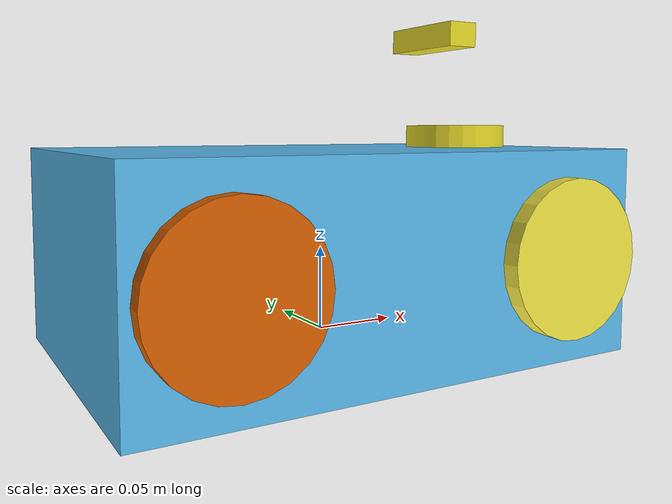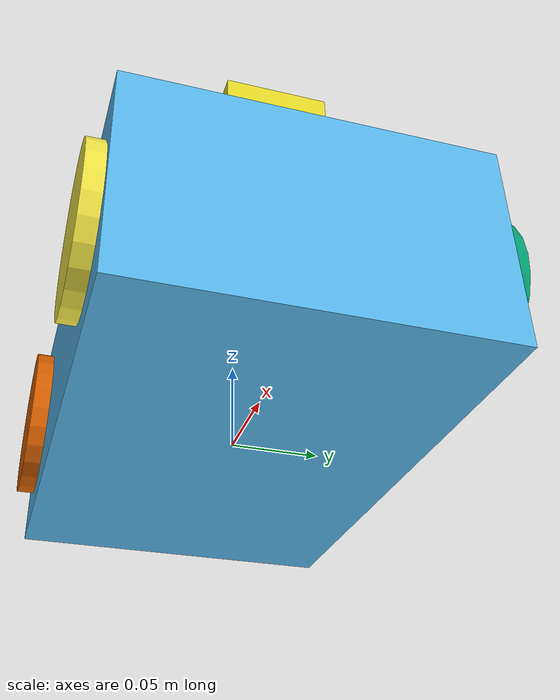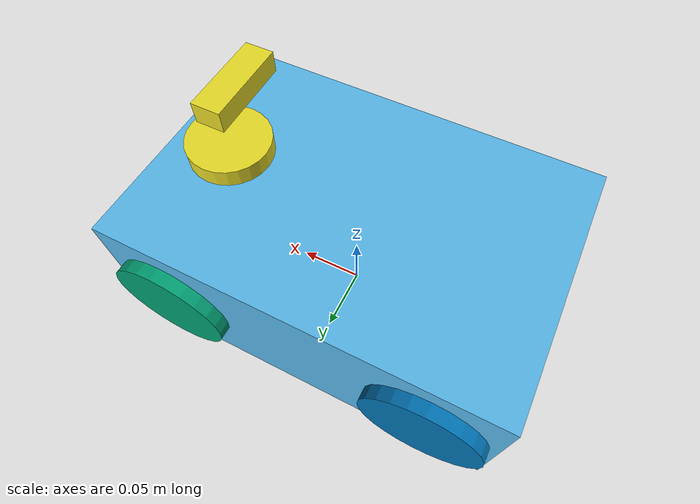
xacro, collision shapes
<?xml version="1.0"?>
<robot name="limo_mecanum" xmlns:xacro="http://www.ros.org/wiki/xacro">
  <xacro:include filename="$(find limo_description)/urdf/limo_xacro.xacro"/>
  <xacro:arg name="use_gz" default="true"/>
  <xacro:arg name="laser_x" default="0.103"/>
  <xacro:arg name="laser_y" default="0.0"/>
  <xacro:arg name="laser_z" default="-0.034"/>
  <xacro:arg name="laser_roll" default="0.0"/>
  <xacro:arg name="laser_pitch" default="0.0"/>
  <xacro:arg name="laser_yaw" default="0.0"/>
  <xacro:arg name="camera_x" default="0.084"/>
  <xacro:arg name="camera_y" default="0.0"/>
  <xacro:arg name="camera_z" default="0.03"/>
  <xacro:arg name="camera_roll" default="0.0"/>
  <xacro:arg name="camera_pitch" default="0.0"/>
  <xacro:arg name="camera_yaw" default="0.0"/>

  <xacro:property name="M_PI" value="3.141592653589793"/>
  <xacro:property name="wheelbase" value="0.20"/>
  <xacro:property name="track" value="0.13"/>
  <xacro:property name="wheel_vertical_offset" value="-0.10"/>
  <xacro:property name="wheel_length" value="0.045"/>
  <xacro:property name="wheel_radius" value="0.045"/>

  <link name="base_footprint"/>
  <joint name="base_joint" type="fixed">
    <parent link="base_footprint"/>
    <child link="base_link"/>
    <origin xyz="0 0 0.15" rpy="0 0 0"/>
  </joint>

  <link name="base_link">
    <inertial>
      <origin xyz="0 0 -0.10" rpy="0 0 0"/>
      <mass value="4.34"/>
      <inertia ixx="0.040" ixy="0" ixz="0" iyy="0.025" iyz="0" izz="0.050"/>
    </inertial>
    <visual>
      <origin xyz="0 0 -0.15" rpy="0 0 ${M_PI/2}"/>
      <geometry>
        <mesh filename="package://limo_description/meshes/limo_base.dae"/>
      </geometry>
    </visual>
    <collision>
      <origin xyz="0 0 -0.10" rpy="0 0 0"/>
      <geometry>
        <box size="0.30 0.20 0.12"/>
      </geometry>
    </collision>
  </link>

  <xacro:limo_wheel parent_prefix="base_link" wheel_prefix="front_left" reflect="1">
    <origin xyz="${wheelbase/2} ${track/2} ${wheel_vertical_offset}" rpy="0 0 0"/>
  </xacro:limo_wheel>
  <xacro:limo_wheel parent_prefix="base_link" wheel_prefix="front_right" reflect="-1">
    <origin xyz="${wheelbase/2} ${-track/2} ${wheel_vertical_offset}" rpy="${M_PI} 0 0"/>
  </xacro:limo_wheel>
  <xacro:limo_wheel parent_prefix="base_link" wheel_prefix="rear_left" reflect="1">
    <origin xyz="${-wheelbase/2} ${track/2} ${wheel_vertical_offset}" rpy="0 0 0"/>
  </xacro:limo_wheel>
  <xacro:limo_wheel parent_prefix="base_link" wheel_prefix="rear_right" reflect="-1">
    <origin xyz="${-wheelbase/2} ${-track/2} ${wheel_vertical_offset}" rpy="${M_PI} 0 0"/>
  </xacro:limo_wheel>

  <xacro:limo_laser parent_prefix="base_link" frame_prefix="laser">
    <origin
      xyz="$(arg laser_x) $(arg laser_y) $(arg laser_z)"
      rpy="$(arg laser_roll) $(arg laser_pitch) $(arg laser_yaw)"/>
  </xacro:limo_laser>
  <xacro:limo_depth_camera parent_prefix="base_link" frame_prefix="camera">
    <origin
      xyz="$(arg camera_x) $(arg camera_y) $(arg camera_z)"
      rpy="$(arg camera_roll) $(arg camera_pitch) $(arg camera_yaw)"/>
  </xacro:limo_depth_camera>
  <xacro:limo_imu parent_prefix="base_link" frame_prefix="imu">
    <origin xyz="0 0 -0.10" rpy="0 0 0"/>
  </xacro:limo_imu>

  <!-- Gazebo Sim / Fortress is the default simulator on ROS 2 Humble. -->
  <xacro:if value="$(arg use_gz)">
    <gazebo>
      <plugin filename="libignition-gazebo6-velocity-control-system.so"
              name="ignition::gazebo::systems::VelocityControl">
        <topic>/cmd_vel</topic>
      </plugin>
      <plugin filename="libignition-gazebo6-odometry-publisher-system.so"
              name="ignition::gazebo::systems::OdometryPublisher">
        <odom_frame>odom</odom_frame>
        <robot_base_frame>base_footprint</robot_base_frame>
        <odom_topic>/odom</odom_topic>
        <tf_topic>/tf</tf_topic>
        <odom_publish_frequency>50</odom_publish_frequency>
      </plugin>
    </gazebo>
  </xacro:if>

  <xacro:unless value="$(arg use_gz)">
    <gazebo>
      <plugin name="mecanum_controller" filename="libgazebo_ros_planar_move.so">
        <command_topic>/cmd_vel</command_topic>
        <odometry_topic>/odom</odometry_topic>
        <odometry_frame>odom</odometry_frame>
        <odometry_rate>50.0</odometry_rate>
        <robot_base_frame>base_footprint</robot_base_frame>
        <publish_odom>true</publish_odom>
        <publish_odom_tf>true</publish_odom_tf>
      </plugin>
    </gazebo>
  </xacro:unless>

  <xacro:if value="$(arg use_gz)">
    <gazebo reference="laser_link">
      <sensor name="lidar" type="gpu_lidar">
      <topic>/scan</topic>
      <gz_frame_id>laser_link</gz_frame_id>
      <always_on>true</always_on>
      <update_rate>10</update_rate>
      <visualize>true</visualize>
      <lidar>
        <scan>
          <horizontal>
            <samples>720</samples>
            <resolution>1</resolution>
            <min_angle>-${M_PI}</min_angle>
            <max_angle>${M_PI}</max_angle>
          </horizontal>
        </scan>
        <range>
          <min>0.12</min>
          <max>12.0</max>
          <resolution>0.01</resolution>
        </range>
        <noise>
          <type>gaussian</type>
          <mean>0.0</mean>
          <stddev>0.01</stddev>
        </noise>
      </lidar>
      </sensor>
    </gazebo>
  </xacro:if>

  <xacro:unless value="$(arg use_gz)">
    <gazebo reference="laser_link">
      <sensor name="lidar" type="ray">
        <always_on>true</always_on>
        <update_rate>10</update_rate>
        <ray>
          <scan><horizontal><samples>720</samples><resolution>1</resolution><min_angle>-${M_PI}</min_angle><max_angle>${M_PI}</max_angle></horizontal></scan>
          <range><min>0.12</min><max>12.0</max><resolution>0.01</resolution></range>
        </ray>
        <plugin name="lidar_ros" filename="libgazebo_ros_ray_sensor.so">
          <ros><remapping>~/out:=/scan</remapping></ros>
          <output_type>sensor_msgs/LaserScan</output_type>
          <frame_name>laser_link</frame_name>
        </plugin>
      </sensor>
    </gazebo>
  </xacro:unless>

  <gazebo reference="camera_link">
    <sensor name="color_camera" type="camera">
      <topic>/camera/color</topic>
      <gz_frame_id>camera_link</gz_frame_id>
      <always_on>true</always_on>
      <update_rate>15</update_rate>
      <camera>
        <horizontal_fov>1.047</horizontal_fov>
        <image>
          <width>640</width>
          <height>480</height>
          <format>R8G8B8</format>
        </image>
        <clip>
          <near>0.10</near>
          <far>20.0</far>
        </clip>
      </camera>
      <xacro:unless value="$(arg use_gz)">
        <plugin name="camera_ros" filename="libgazebo_ros_camera.so">
          <ros>
            <remapping>image_raw:=/camera/color/image_raw</remapping>
            <remapping>camera_info:=/camera/color/camera_info</remapping>
          </ros>
          <camera_name>camera_color</camera_name>
          <frame_name>camera_link</frame_name>
        </plugin>
      </xacro:unless>
    </sensor>
  </gazebo>

  <gazebo reference="imu_link">
    <sensor name="imu" type="imu">
      <topic>/imu</topic>
      <gz_frame_id>imu_link</gz_frame_id>
      <always_on>true</always_on>
      <update_rate>100</update_rate>
      <xacro:unless value="$(arg use_gz)">
        <plugin name="imu_ros" filename="libgazebo_ros_imu_sensor.so">
          <ros><remapping>~/out:=/imu</remapping></ros>
          <frame_name>imu_link</frame_name>
        </plugin>
      </xacro:unless>
    </sensor>
  </gazebo>
</robot>

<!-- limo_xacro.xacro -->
<robot name="limo_xacro" xmlns:xacro="http://ros.org/wiki/xacro">
    <xacro:macro name="limo_wheel" params="parent_prefix wheel_prefix reflect *joint_pose">
        <link name="${wheel_prefix}_wheel_link">
            <inertial>
                <origin xyz="0 0 0" />
                <mass value="0.5" />
                <inertia ixx="0.01055" ixy="0" ixz="0" iyy="0.00075" iyz="0" izz="0.01055" />
            </inertial>
            <visual>
                <origin xyz="0 0 0" rpy="0 0 0" />
                <geometry>
                    <mesh filename="package://limo_description/meshes/limo_wheel.dae" />
                </geometry>
            </visual>
            <collision>
              <origin xyz="0 ${wheel_length/2} 0" rpy="1.57 0 0" />
              <geometry>
                  <cylinder length="${wheel_length}" radius="${wheel_radius}" />
              </geometry>
            </collision>
        </link>

        <joint name="${wheel_prefix}_wheel" type="continuous">
            <parent link="${parent_prefix}"/>
            <child link="${wheel_prefix}_wheel_link"/>
            <xacro:insert_block name="joint_pose"/>
            <axis xyz="0 ${reflect*1} 0"/>
        </joint>
    </xacro:macro>

    <xacro:macro name="limo_laser" params="parent_prefix frame_prefix *joint_pose">
        <link name='${frame_prefix}_link'>
            <pose>0 0 0 0 0 0</pose>
            <inertial>
                <mass value="0.1"/>
                <origin xyz="0.0 0 0" rpy="0 0 0"/>
                <inertia
                    ixx="1e-6" ixy="0" ixz="0"
                    iyy="1e-6" iyz="0"
                    izz="1e-6"
                />
            </inertial>
            <visual name='laser_visual'>
                <origin xyz="0 0 0" rpy="0 0 0"/>
                <geometry>
                    <cylinder radius="0.02" length="0.01"/>
                </geometry>
                <material name='laser_material'>
                    <ambient>0.1 0.1 0.1 1</ambient>
                    <diffuse>0.1 0.1 0.2 1</diffuse>
                    <specular>0 0 0 0</specular>
                    <emissive>0 0 0 1</emissive>
                </material>
            </visual>
            <collision name='laser_collision'>
                <origin xyz="0 0 0" rpy="0 0 0"/>
                <geometry>
                    <cylinder radius="0.032" length="0.016"/>
                </geometry>
            </collision>
        </link>
        <joint type="fixed" name="laser_joint">
            <xacro:insert_block name="joint_pose"/>
            <child link="${frame_prefix}_link"/>
            <parent link="${parent_prefix}"/>
        </joint>
        <gazebo reference="${frame_prefix}_link">
            <material>Gazebo/Yellow</material>
        </gazebo>
    </xacro:macro>

    <xacro:macro name="limo_depth_camera" params="parent_prefix frame_prefix *joint_pose">
        <link name='${frame_prefix}_link'>
            <pose>0 0 0 0 0 0</pose>
            <inertial>
                <mass value="0.1"/>
                <origin xyz="0.0 0 0" rpy="0 0 0"/>
                <inertia
                    ixx="1e-6" ixy="0" ixz="0"
                    iyy="1e-6" iyz="0"
                    izz="1e-6"
                />
            </inertial>
            <visual name='depth_camera_visual'>
                <origin xyz="0 0 0" rpy="0 0 0"/>
                <geometry>
                    <box size="0.02 0.06 0.015"/>
                </geometry>
                <material name='depth_camera_material'>
                    <ambient>0.1 0.1 0.1 1</ambient>
                    <diffuse>0.1 0.1 0.2 1</diffuse>
                    <specular>0 0 0 0</specular>
                    <emissive>0 0 0 1</emissive>
                </material>
            </visual>
            <collision name='depth_camera_collision'>
                <origin xyz="0 0 0" rpy="0 0 0"/>
                <geometry>
                    <box size="0.02 0.06 0.015"/>
                </geometry>
            </collision>
        </link>

        <joint type="fixed" name="depth_camera_joint">
            <xacro:insert_block name="joint_pose"/>
            <child link="${frame_prefix}_link"/>
            <parent link="${parent_prefix}"/>
        </joint>
        <link name="depth_link"></link>

        <joint name="${frame_prefix}_to_camera_joint" type="fixed">
            <origin xyz="0 0 0" rpy="${-M_PI/2} 0 ${-M_PI/2} "/>
            <parent link="${frame_prefix}_link"/>
            <child link="depth_link"/>
          </joint>

        <gazebo reference="${frame_prefix}_link">
            <material>Gazebo/Yellow</material>
        </gazebo>
    </xacro:macro>

    <xacro:macro name="limo_imu" params="parent_prefix frame_prefix  *joint_pose">
        <link name='${frame_prefix}_link'>
            <pose>0 0 0 0 0 0</pose>
            <inertial>
                <mass value="0.01"/>
                <origin xyz="0.0 0 0" rpy="0 0 0"/>
                <inertia
                    ixx="1e-7" ixy="0" ixz="0"
                    iyy="1e-7" iyz="0"
                    izz="1e-7"
                />
            </inertial>
            <visual name='imu_visual'>
                <origin xyz="0 0 0" rpy="0 0 0"/>
                <geometry>
                    <box size="0.001 0.001 0.001"/>
                </geometry>
                <material name='imu_material'>
                    <ambient>0.1 0.1 0.1 1</ambient>
                    <diffuse>0.1 0.1 0.2 1</diffuse>
                    <specular>0 0 0 0</specular>
                    <emissive>0 0 0 1</emissive>
                </material>
            </visual>
            <collision name='imu_collision'>
                <origin xyz="0 0 0" rpy="0 0 0"/>
                <geometry>
                    <box size="0.001 0.001 0.001"/>
                </geometry>
            </collision>
        </link>
        <joint type="fixed" name="imu_joint">
            <xacro:insert_block name="joint_pose"/>
            <child link="${frame_prefix}_link"/>
            <parent link="${parent_prefix}"/>
        </joint>
        <gazebo reference="${frame_prefix}_link">
            <material>Gazebo/Yellow</material>
        </gazebo>
    </xacro:macro>
</robot>
